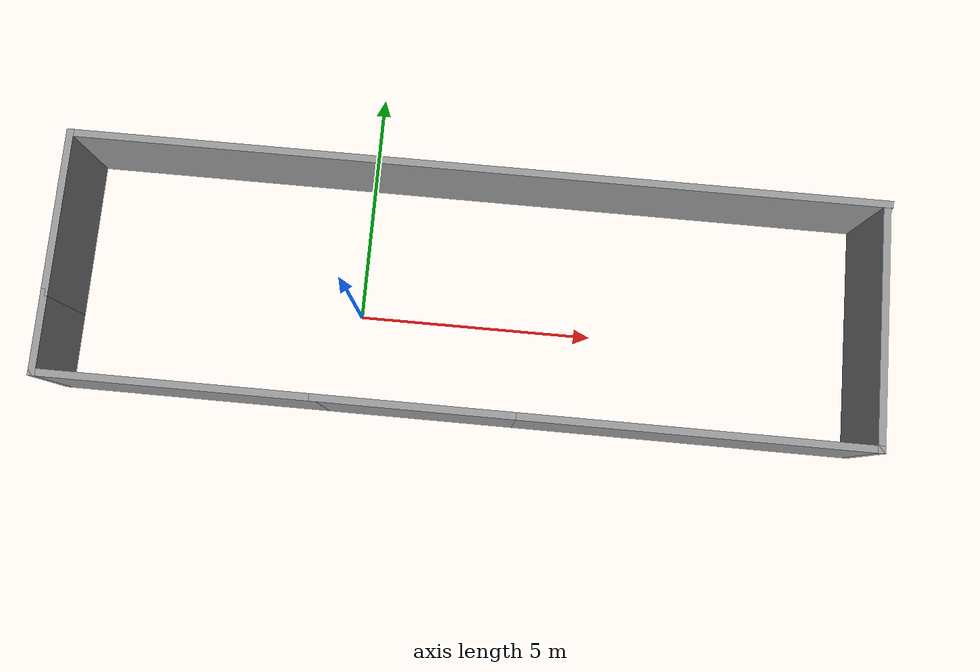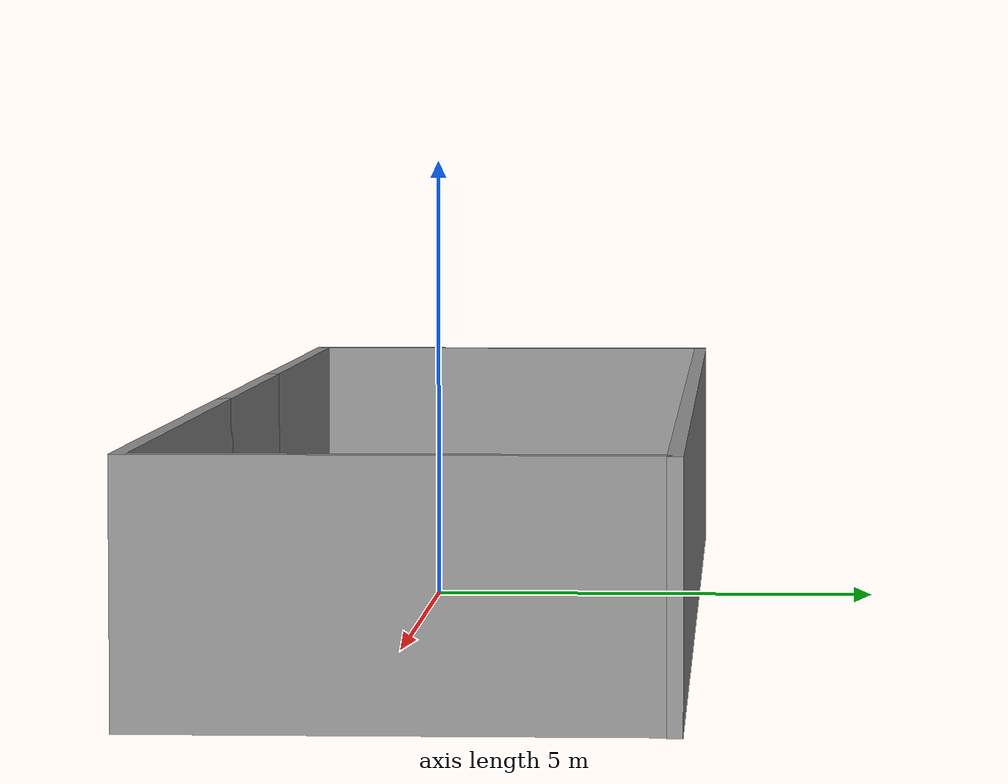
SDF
<?xml version='1.0'?>
<sdf version='1.7'>
  <model name='map2'>
    <pose>2.265 0.465 0 0 -0 0</pose>
    <link name='Wall_0'>
      <collision name='Wall_0_Collision'>
        <geometry>
          <box>
            <size>4.25 0.15 2.5</size>
          </box>
        </geometry>
        <pose>0 0 1.25 0 -0 0</pose>
      </collision>
      <visual name='Wall_0_Visual'>
        <pose>0 0 1.25 0 -0 0</pose>
        <geometry>
          <box>
            <size>4.25 0.15 2.5</size>
          </box>
        </geometry>
        <material>
          <script>
            <uri>file://media/materials/scripts/gazebo.material</uri>
            <name>Gazebo/Grey</name>
          </script>
          <ambient>1 1 1 1</ambient>
        </material>
        <meta>
          <layer>0</layer>
        </meta>
      </visual>
      <pose>-0.775 -2.475 0 0 -0 0</pose>
    </link>
    <link name='Wall_10'>
      <collision name='Wall_10_Collision'>
        <geometry>
          <box>
            <size>5 0.15 2.5</size>
          </box>
        </geometry>
        <pose>0 0 1.25 0 -0 0</pose>
      </collision>
      <visual name='Wall_10_Visual'>
        <pose>0 0 1.25 0 -0 0</pose>
        <geometry>
          <box>
            <size>5 0.15 2.5</size>
          </box>
        </geometry>
        <material>
          <script>
            <uri>file://media/materials/scripts/gazebo.material</uri>
            <name>Gazebo/Grey</name>
          </script>
          <ambient>1 1 1 1</ambient>
        </material>
        <meta>
          <layer>0</layer>
        </meta>
      </visual>
      <pose>8.375 -0.05 0 0 -0 1.5708</pose>
    </link>
    <link name='Wall_2'>
      <collision name='Wall_2_Collision'>
        <geometry>
          <box>
            <size>5.75 0.15 2.5</size>
          </box>
        </geometry>
        <pose>0 0 1.25 0 -0 0</pose>
      </collision>
      <visual name='Wall_2_Visual'>
        <pose>0 0 1.25 0 -0 0</pose>
        <geometry>
          <box>
            <size>5.75 0.15 2.5</size>
          </box>
        </geometry>
        <material>
          <script>
            <uri>file://media/materials/scripts/gazebo.material</uri>
            <name>Gazebo/Grey</name>
          </script>
          <ambient>1 1 1 1</ambient>
        </material>
        <meta>
          <layer>0</layer>
        </meta>
      </visual>
      <pose>-5.625 -2.475 0 0 -0 3.14159</pose>
    </link>
    <link name='Wall_3'>
      <collision name='Wall_3_Collision'>
        <geometry>
          <box>
            <size>1.75 0.15 2.5</size>
          </box>
        </geometry>
        <pose>0 0 1.25 0 -0 0</pose>
      </collision>
      <visual name='Wall_3_Visual'>
        <pose>0 0 1.25 0 -0 0</pose>
        <geometry>
          <box>
            <size>1.75 0.15 2.5</size>
          </box>
        </geometry>
        <material>
          <script>
            <uri>file://media/materials/scripts/gazebo.material</uri>
            <name>Gazebo/Grey</name>
          </script>
          <ambient>1 1 1 1</ambient>
        </material>
        <meta>
          <layer>0</layer>
        </meta>
      </visual>
      <pose>-8.425 -1.675 0 0 -0 1.5708</pose>
    </link>
    <link name='Wall_6'>
      <collision name='Wall_6_Collision'>
        <geometry>
          <box>
            <size>3.5 0.15 2.5</size>
          </box>
        </geometry>
        <pose>0 0 1.25 0 -0 0</pose>
      </collision>
      <visual name='Wall_6_Visual'>
        <pose>0 0 1.25 0 -0 0</pose>
        <geometry>
          <box>
            <size>3.5 0.15 2.5</size>
          </box>
        </geometry>
        <material>
          <script>
            <uri>file://media/materials/scripts/gazebo.material</uri>
            <name>Gazebo/Grey</name>
          </script>
          <ambient>1 1 1 1</ambient>
        </material>
        <meta>
          <layer>0</layer>
        </meta>
      </visual>
      <pose>-8.425 0.8 0 0 -0 1.5708</pose>
    </link>
    <link name='Wall_7'>
      <collision name='Wall_7_Collision'>
        <geometry>
          <box>
            <size>17 0.15 2.5</size>
          </box>
        </geometry>
        <pose>0 0 1.25 0 -0 0</pose>
      </collision>
      <visual name='Wall_7_Visual'>
        <pose>0 0 1.25 0 -0 0</pose>
        <geometry>
          <box>
            <size>17 0.15 2.5</size>
          </box>
        </geometry>
        <material>
          <script>
            <uri>file://media/materials/scripts/gazebo.material</uri>
            <name>Gazebo/Grey</name>
          </script>
          <ambient>1 1 1 1</ambient>
        </material>
        <meta>
          <layer>0</layer>
        </meta>
      </visual>
      <pose>0 2.475 0 0 -0 0</pose>
    </link>
    <link name='Wall_9'>
      <collision name='Wall_9_Collision'>
        <geometry>
          <box>
            <size>7.25 0.15 2.5</size>
          </box>
        </geometry>
        <pose>0 0 1.25 0 -0 0</pose>
      </collision>
      <visual name='Wall_9_Visual'>
        <pose>0 0 1.25 0 -0 0</pose>
        <geometry>
          <box>
            <size>7.25 0.15 2.5</size>
          </box>
        </geometry>
        <material>
          <script>
            <uri>file://media/materials/scripts/gazebo.material</uri>
            <name>Gazebo/Grey</name>
          </script>
          <ambient>1 1 1 1</ambient>
        </material>
        <meta>
          <layer>0</layer>
        </meta>
      </visual>
      <pose>4.825 -2.475 0 0 -0 0</pose>
    </link>
    <static>1</static>
  </model>
</sdf>
